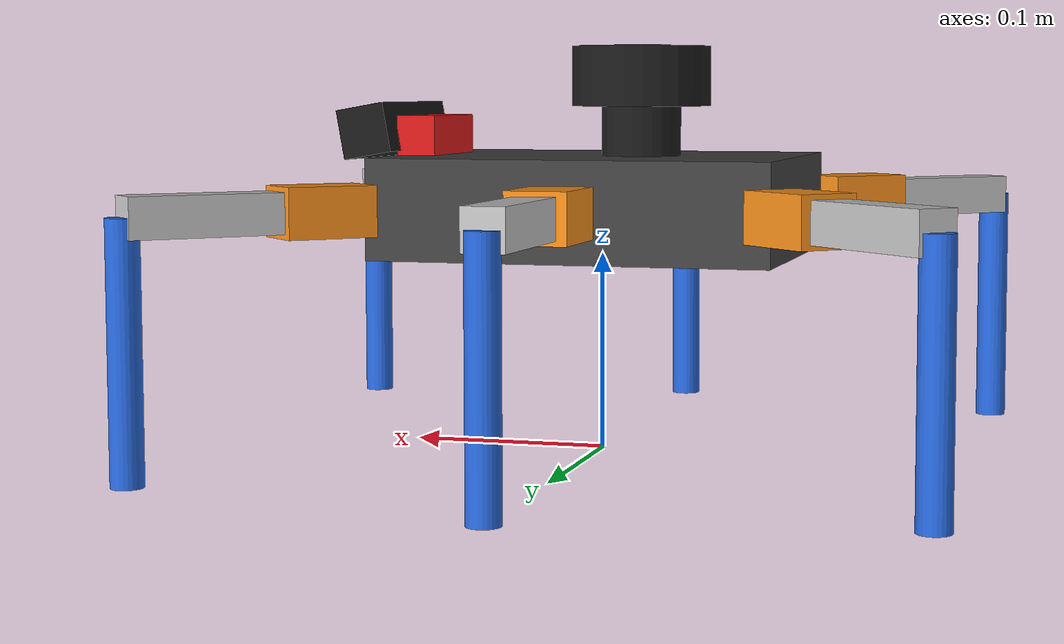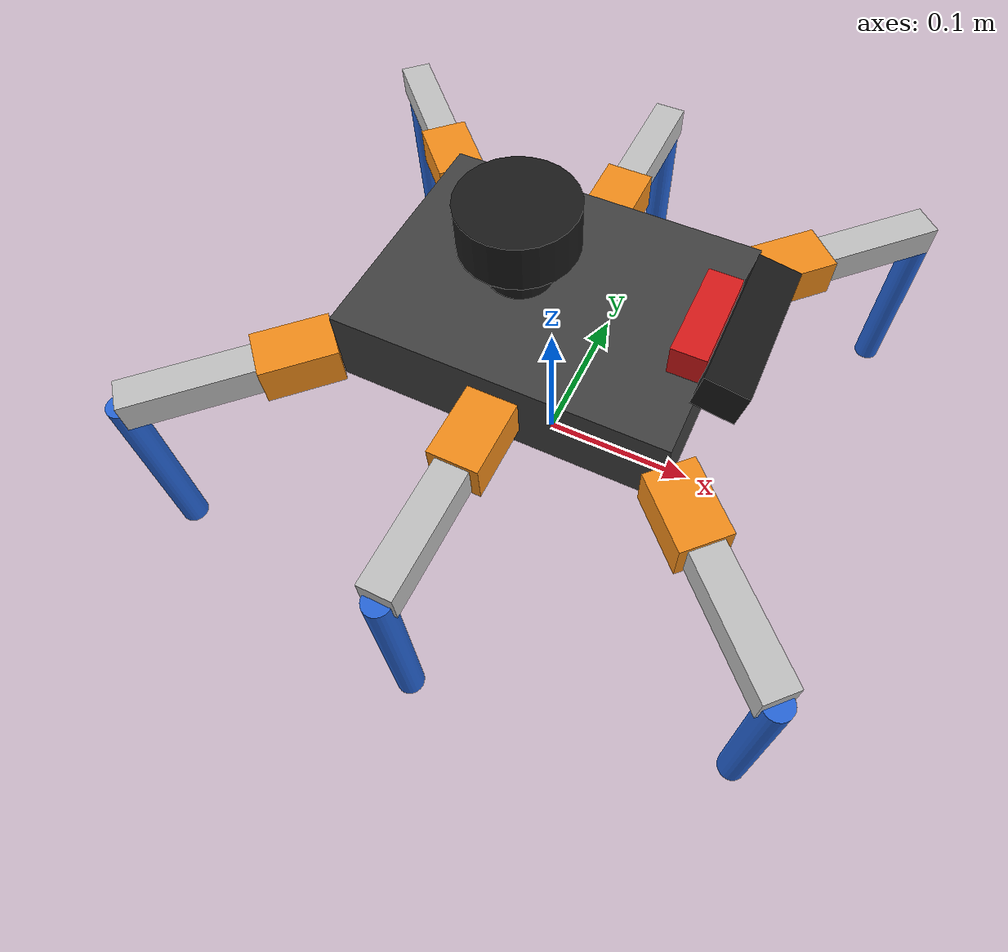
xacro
<?xml version="1.0"?>
<robot name="spiderbot" xmlns:xacro="http://www.ros.org/wiki/xacro">

  <!-- Body box (ESTIMATE) -->
  <xacro:property name="body_length" value="0.20"/>
  <xacro:property name="body_width" value="0.15"/>
  <xacro:property name="body_height" value="0.05"/>

  <!-- Leg segment lengths, joint axis to joint axis (ESTIMATE) -->
  <xacro:property name="coxa_length" value="0.045"/>
  <xacro:property name="femur_length" value="0.075"/>
  <xacro:property name="tibia_length" value="0.125"/>

  <!-- Joint limits are placeholders, not JetHexa servo specs. effort/velocity are
       required by URDF but unused by the display tools. -->
  <xacro:property name="coxa_limit" value="${pi/4}"/>
  <xacro:property name="femur_limit" value="${pi/2}"/>
  <xacro:property name="tibia_limit" value="${pi/2}"/>
  <xacro:property name="joint_effort" value="3.0"/>
  <xacro:property name="joint_velocity" value="5.0"/>

  <!-- Masses in kg (ESTIMATE). The body includes the Jetson, battery and electronics;
       each leg segment includes its servo. -->
  <xacro:property name="body_mass" value="1.2"/>
  <xacro:property name="coxa_mass" value="0.06"/>
  <xacro:property name="femur_mass" value="0.08"/>
  <xacro:property name="tibia_mass" value="0.04"/>

  <!-- Sensor mounts (ESTIMATE). The lidar's scan plane ends up about 19 cm above the dirt.
       The camera is tilted down so it sees the ground ahead as well as walls and piers. -->
  <xacro:property name="lidar_xyz" value="-0.02 0 0.065"/>
  <xacro:property name="camera_xyz" value="${body_length/2 + 0.0125} 0 ${body_height/2 + 0.0125}"/>
  <xacro:property name="camera_tilt" value="${10*pi/180}"/>
  <!-- Soil moisture probe: a rod from the underside of the body to the ground, between the front legs -->
  <xacro:property name="probe_x" value="0.06"/>
  <xacro:property name="probe_length" value="${tibia_length - body_height/2}"/>

  <material name="body"><color rgba="0.25 0.25 0.25 1"/></material>
  <material name="heading"><color rgba="0.85 0.1 0.1 1"/></material>
  <material name="coxa"><color rgba="0.95 0.55 0.1 1"/></material>
  <material name="femur"><color rgba="0.75 0.75 0.75 1"/></material>
  <material name="tibia"><color rgba="0.15 0.4 0.85 1"/></material>
  <material name="sensor"><color rgba="0.1 0.1 0.1 1"/></material>
  <material name="probe"><color rgba="0.2 0.75 0.75 1"/></material>

  <xacro:arg name="collisions" default="false"/>

  <!-- A part's visual plus solid-body inertia (and, with collisions:=true, a matching
       collision shape), centred at xyz -->
  <xacro:macro name="box_part" params="x y z xyz mass material">
    <visual>
      <origin xyz="${xyz}"/>
      <geometry><box size="${x} ${y} ${z}"/></geometry>
      <material name="${material}"/>
    </visual>
    <xacro:if value="$(arg collisions)">
      <collision>
        <origin xyz="${xyz}"/>
        <geometry><box size="${x} ${y} ${z}"/></geometry>
      </collision>
    </xacro:if>
    <inertial>
      <origin xyz="${xyz}"/>
      <mass value="${mass}"/>
      <inertia ixx="${mass*(y*y + z*z)/12}" ixy="0" ixz="0"
               iyy="${mass*(x*x + z*z)/12}" iyz="0" izz="${mass*(x*x + y*y)/12}"/>
    </inertial>
  </xacro:macro>

  <xacro:macro name="cylinder_part" params="radius length xyz mass material">
    <visual>
      <origin xyz="${xyz}"/>
      <geometry><cylinder radius="${radius}" length="${length}"/></geometry>
      <material name="${material}"/>
    </visual>
    <xacro:if value="$(arg collisions)">
      <collision>
        <origin xyz="${xyz}"/>
        <geometry><cylinder radius="${radius}" length="${length}"/></geometry>
      </collision>
    </xacro:if>
    <inertial>
      <origin xyz="${xyz}"/>
      <mass value="${mass}"/>
      <inertia ixx="${mass*(3*radius*radius + length*length)/12}" ixy="0" ixz="0"
               iyy="${mass*(3*radius*radius + length*length)/12}" iyz="0" izz="${mass*radius*radius/2}"/>
    </inertial>
  </xacro:macro>

  <!-- Massless root on the ground, so KDL doesn't warn about a root link with inertia -->
  <link name="base_footprint"/>
  <joint name="base_joint" type="fixed">
    <parent link="base_footprint"/>
    <child link="base_link"/>
    <origin xyz="0 0 ${tibia_length}"/>
  </joint>

  <link name="base_link">
    <xacro:box_part x="${body_length}" y="${body_width}" z="${body_height}" xyz="0 0 0"
                    mass="${body_mass}" material="body"/>
    <!-- Heading marker on the front edge, just behind the camera -->
    <visual>
      <origin xyz="${body_length/2 - 0.01} 0 ${body_height/2 + 0.01}"/>
      <geometry><box size="0.02 0.06 0.02"/></geometry>
      <material name="heading"/>
    </visual>
  </link>

  <joint name="laser_joint" type="fixed">
    <parent link="base_link"/>
    <child link="laser_link"/>
    <origin xyz="${lidar_xyz}"/>
  </joint>
  <link name="laser_link">
    <xacro:cylinder_part radius="0.035" length="0.03" xyz="0 0 0" mass="0.15" material="sensor"/>
    <!-- Stand between the body and the lidar puck -->
    <visual>
      <origin xyz="0 0 -0.0275"/>
      <geometry><cylinder radius="0.02" length="0.025"/></geometry>
      <material name="sensor"/>
    </visual>
  </link>

  <joint name="camera_joint" type="fixed">
    <parent link="base_link"/>
    <child link="camera_link"/>
    <origin xyz="${camera_xyz}" rpy="0 ${camera_tilt} 0"/>
  </joint>
  <link name="camera_link">
    <xacro:box_part x="0.025" y="0.09" z="0.025" xyz="0 0 0" mass="0.1" material="sensor"/>
  </link>
  <joint name="camera_optical_joint" type="fixed">
    <parent link="camera_link"/>
    <child link="camera_optical_frame"/>
    <origin rpy="${-pi/2} 0 ${-pi/2}"/>
  </joint>
  <link name="camera_optical_frame"/>

  <!-- moisture_probe_link is the probe tip, on the ground; the rod rises from it to the body -->
  <joint name="moisture_probe_joint" type="fixed">
    <parent link="base_link"/>
    <child link="moisture_probe_link"/>
    <origin xyz="${probe_x} 0 ${-tibia_length}"/>
  </joint>
  <link name="moisture_probe_link">
    <xacro:cylinder_part radius="0.004" length="${probe_length}" xyz="0 0 ${probe_length/2}" mass="0.01" material="probe"/>
  </link>

  <!-- One 3-DOF leg mounted on base_link at (x, y), with its local x axis rotated
       by yaw so that it points away from the body. -->
  <xacro:macro name="leg" params="prefix x y yaw">
    <joint name="${prefix}_coxa_joint" type="revolute">
      <parent link="base_link"/>
      <child link="${prefix}_coxa_link"/>
      <origin xyz="${x} ${y} 0" rpy="0 0 ${yaw}"/>
      <axis xyz="0 0 1"/>
      <limit lower="${-coxa_limit}" upper="${coxa_limit}" effort="${joint_effort}" velocity="${joint_velocity}"/>
    </joint>
    <link name="${prefix}_coxa_link">
      <xacro:box_part x="${coxa_length}" y="0.03" z="0.025" xyz="${coxa_length/2} 0 0"
                      mass="${coxa_mass}" material="coxa"/>
    </link>

    <joint name="${prefix}_femur_joint" type="revolute">
      <parent link="${prefix}_coxa_link"/>
      <child link="${prefix}_femur_link"/>
      <origin xyz="${coxa_length} 0 0"/>
      <axis xyz="0 -1 0"/>
      <limit lower="${-femur_limit}" upper="${femur_limit}" effort="${joint_effort}" velocity="${joint_velocity}"/>
    </joint>
    <link name="${prefix}_femur_link">
      <xacro:box_part x="${femur_length}" y="0.02" z="0.02" xyz="${femur_length/2} 0 0"
                      mass="${femur_mass}" material="femur"/>
    </link>

    <joint name="${prefix}_tibia_joint" type="revolute">
      <parent link="${prefix}_femur_link"/>
      <child link="${prefix}_tibia_link"/>
      <origin xyz="${femur_length} 0 0"/>
      <axis xyz="0 -1 0"/>
      <limit lower="${-tibia_limit}" upper="${tibia_limit}" effort="${joint_effort}" velocity="${joint_velocity}"/>
    </joint>
    <link name="${prefix}_tibia_link">
      <!-- Cylinders are aligned with z, so this hangs straight down at zero -->
      <xacro:cylinder_part radius="0.008" length="${tibia_length}" xyz="0 0 ${-tibia_length/2}"
                           mass="${tibia_mass}" material="tibia"/>
    </link>

    <joint name="${prefix}_foot_joint" type="fixed">
      <parent link="${prefix}_tibia_link"/>
      <child link="${prefix}_foot_link"/>
      <origin xyz="0 0 ${-tibia_length}"/>
    </joint>
    <link name="${prefix}_foot_link"/>

    <xacro:leg_gazebo prefix="${prefix}"/>
  </xacro:macro>

  <xacro:include filename="$(find spiderbot_description)/urdf/spiderbot.gazebo.xacro"/>

  <xacro:leg prefix="front_left"   x="${body_length/2}"  y="${body_width/2}"  yaw="${pi/4}"/>
  <xacro:leg prefix="middle_left"  x="0"                 y="${body_width/2}"  yaw="${pi/2}"/>
  <xacro:leg prefix="rear_left"    x="${-body_length/2}" y="${body_width/2}"  yaw="${3*pi/4}"/>
  <xacro:leg prefix="front_right"  x="${body_length/2}"  y="${-body_width/2}" yaw="${-pi/4}"/>
  <xacro:leg prefix="middle_right" x="0"                 y="${-body_width/2}" yaw="${-pi/2}"/>
  <xacro:leg prefix="rear_right"   x="${-body_length/2}" y="${-body_width/2}" yaw="${-3*pi/4}"/>

</robot>
